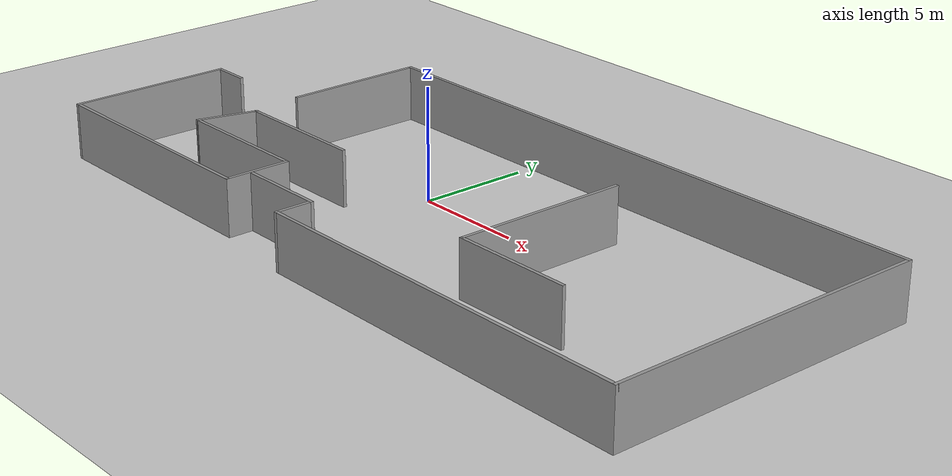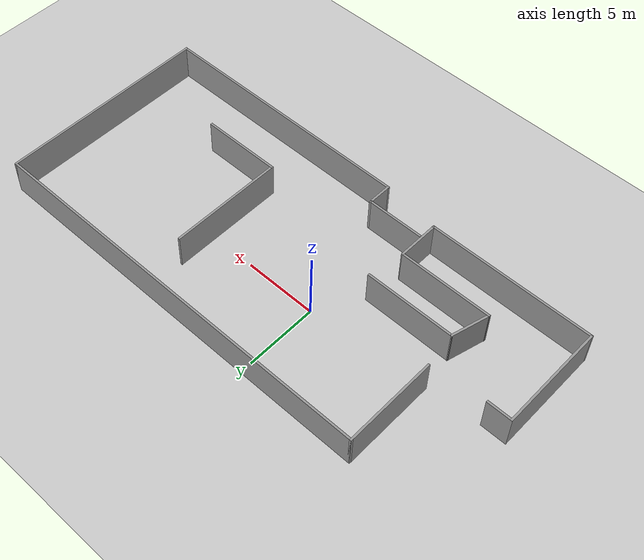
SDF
<sdf version="1.6">
 <world name="default">
  <light name="sun" type="directional">
   <pose>0 0 10 0 -0 0</pose>
   <diffuse>0.8 0.8 0.8 1</diffuse>
   <specular>0.2 0.2 0.2 1</specular>
   <attenuation>
    <range>1000</range>
    <constant>0.9</constant>
    <linear>0.01</linear>
    <quadratic>0.001</quadratic>
   </attenuation>
   <direction>-0.5 0.1 -0.9</direction>
  </light>
  <model name="ground_plane">
   <static>1</static>
   <link name="link">
    <collision name="collision">
     <geometry><plane><normal>0 0 1</normal><size>100 100</size></plane></geometry>
     <surface><friction><ode><mu>100</mu><mu2>50</mu2></ode></friction></surface>
    </collision>
    <visual name="visual">
     <cast_shadows>0</cast_shadows>
     <geometry><plane><normal>0 0 1</normal><size>100 100</size></plane></geometry>
     <material>
      <script><uri>file://media/materials/scripts/gazebo.material</uri><name>Gazebo/Grey</name></script>
     </material>
    </visual>
   </link>
  </model>
  <gravity>0 0 -9.8</gravity>
  <magnetic_field>6e-06 2.3e-05 -4.2e-05</magnetic_field>
  <atmosphere type="adiabatic"/>
  <physics name="default_physics" default="0" type="ode">
   <max_step_size>0.001</max_step_size>
   <real_time_factor>1</real_time_factor>
   <real_time_update_rate>1000</real_time_update_rate>
  </physics>
  <scene><ambient>0.4 0.4 0.4 1</ambient><background>0.7 0.7 0.7 1</background><shadows>1</shadows></scene>
  <spherical_coordinates>
   <surface_model>EARTH_WGS84</surface_model>
   <latitude_deg>0</latitude_deg>
   <longitude_deg>0</longitude_deg>
   <elevation>0</elevation>
   <heading_deg>0</heading_deg>
  </spherical_coordinates>
  <model name="people">
   <pose>3.12671 -1.52783 0 0 -0 0</pose>
   <link name="Wall_0">
    <collision name="Wall_0_Collision">
     <geometry><box><size>6.5 0.15 2.5</size></box></geometry>
     <pose>0 0 1.25 0 -0 0</pose>
    </collision>
    <visual name="Wall_0_Visual">
     <pose>0 0 1.25 0 -0 0</pose>
     <geometry><box><size>6.5 0.15 2.5</size></box></geometry>
     <material>
      <script><uri>file://media/materials/scripts/gazebo.material</uri><name>Gazebo/Grey</name></script>
      <ambient>1 1 1 1</ambient>
     </material>
     <meta><layer>0</layer></meta>
    </visual>
    <pose>-11.3635 4.125 0 0 -0 1.5708</pose>
   </link>
   <link name="Wall_1">
    <collision name="Wall_1_Collision">
     <geometry><box><size>28.25 0.15 2.5</size></box></geometry>
     <pose>0 0 1.25 0 -0 0</pose>
    </collision>
    <visual name="Wall_1_Visual">
     <pose>0 0 1.25 0 -0 0</pose>
     <geometry><box><size>28.25 0.15 2.5</size></box></geometry>
     <material>
      <script><uri>file://media/materials/scripts/gazebo.material</uri><name>Gazebo/Grey</name></script>
      <ambient>1 1 1 1</ambient>
     </material>
     <meta><layer>0</layer></meta>
    </visual>
    <pose>2.68647 7.3 0 0 -0 0</pose>
   </link>
   <link name="Wall_10">
    <collision name="Wall_10_Collision">
     <geometry><box><size>2.75 0.15 2.5</size></box></geometry>
     <pose>0 0 1.25 0 -0 0</pose>
    </collision>
    <visual name="Wall_10_Visual">
     <pose>0 0 1.25 0 -0 0</pose>
     <geometry><box><size>2.75 0.15 2.5</size></box></geometry>
     <material>
      <script><uri>file://media/materials/scripts/gazebo.material</uri><name>Gazebo/Grey</name></script>
      <ambient>1 1 1 1</ambient>
     </material>
     <meta><layer>0</layer></meta>
    </visual>
    <pose>-11.4 -2.7057 0 0 -0 -1.8326</pose>
   </link>
   <link name="Wall_11">
    <collision name="Wall_11_Collision">
     <geometry><box><size>6.5 0.15 2.5</size></box></geometry>
     <pose>0 0 1.25 0 -0 0</pose>
    </collision>
    <visual name="Wall_11_Visual">
     <pose>0 0 1.25 0 -0 0</pose>
     <geometry><box><size>6.5 0.15 2.5</size></box></geometry>
     <material>
      <script><uri>file://media/materials/scripts/gazebo.material</uri><name>Gazebo/Grey</name></script>
      <ambient>1 1 1 1</ambient>
     </material>
     <meta><layer>0</layer></meta>
    </visual>
    <pose>-8.56147 -3.96141 0 0 -0 0</pose>
   </link>
   <link name="Wall_12">
    <collision name="Wall_12_Collision">
     <geometry><box><size>3 0.15 2.5</size></box></geometry>
     <pose>0 0 1.25 0 -0 0</pose>
    </collision>
    <visual name="Wall_12_Visual">
     <pose>0 0 1.25 0 -0 0</pose>
     <geometry><box><size>3 0.15 2.5</size></box></geometry>
     <material>
      <script><uri>file://media/materials/scripts/gazebo.material</uri><name>Gazebo/Grey</name></script>
      <ambient>1 1 1 1</ambient>
     </material>
     <meta><layer>0</layer></meta>
    </visual>
    <pose>-5.38647 -5.38641 0 0 -0 -1.5708</pose>
   </link>
   <link name="Wall_13">
    <collision name="Wall_13_Collision">
     <geometry><box><size>11.5 0.15 2.5</size></box></geometry>
     <pose>0 0 1.25 0 -0 0</pose>
    </collision>
    <visual name="Wall_13_Visual">
     <pose>0 0 1.25 0 -0 0</pose>
     <geometry><box><size>11.5 0.15 2.5</size></box></geometry>
     <material>
      <script><uri>file://media/materials/scripts/gazebo.material</uri><name>Gazebo/Grey</name></script>
      <ambient>1 1 1 1</ambient>
     </material>
     <meta><layer>0</layer></meta>
    </visual>
    <pose>-11.0615 -6.81141 0 0 -0 3.14159</pose>
   </link>
   <link name="Wall_14">
    <collision name="Wall_14_Collision">
     <geometry><box><size>7.5 0.15 2.5</size></box></geometry>
     <pose>0 0 1.25 0 -0 0</pose>
    </collision>
    <visual name="Wall_14_Visual">
     <pose>0 0 1.25 0 -0 0</pose>
     <geometry><box><size>7.5 0.15 2.5</size></box></geometry>
     <material>
      <script><uri>file://media/materials/scripts/gazebo.material</uri><name>Gazebo/Grey</name></script>
      <ambient>1 1 1 1</ambient>
     </material>
     <meta><layer>0</layer></meta>
    </visual>
    <pose>-16.7365 -3.13641 0 0 -0 1.5708</pose>
   </link>
   <link name="Wall_15">
    <collision name="Wall_15_Collision">
     <geometry><box><size>1.75 0.15 2.5</size></box></geometry>
     <pose>0 0 1.25 0 -0 0</pose>
    </collision>
    <visual name="Wall_15_Visual">
     <pose>0 0 1.25 0 -0 0</pose>
     <geometry><box><size>1.75 0.15 2.5</size></box></geometry>
     <material>
      <script><uri>file://media/materials/scripts/gazebo.material</uri><name>Gazebo/Grey</name></script>
      <ambient>1 1 1 1</ambient>
     </material>
     <meta><layer>0</layer></meta>
    </visual>
    <pose>-15.9365 0.538593 0 0 -0 0</pose>
   </link>
   <link name="Wall_17">
    <collision name="Wall_17_Collision">
     <geometry><box><size>1.75 0.15 2.5</size></box></geometry>
     <pose>0 0 1.25 0 -0 0</pose>
    </collision>
    <visual name="Wall_17_Visual">
     <pose>0 0 1.25 0 -0 0</pose>
     <geometry><box><size>1.75 0.15 2.5</size></box></geometry>
     <material>
      <script><uri>file://media/materials/scripts/gazebo.material</uri><name>Gazebo/Grey</name></script>
      <ambient>1 1 1 1</ambient>
     </material>
     <meta><layer>0</layer></meta>
    </visual>
    <pose>-1.36353 -6.5 0 0 -0 1.5708</pose>
   </link>
   <link name="Wall_18">
    <collision name="Wall_18_Collision">
     <geometry><box><size>4 0.15 2.5</size></box></geometry>
     <pose>0 0 1.25 0 -0 0</pose>
    </collision>
    <visual name="Wall_18_Visual">
     <pose>0 0 1.25 0 -0 0</pose>
     <geometry><box><size>4 0.15 2.5</size></box></geometry>
     <material>
      <script><uri>file://media/materials/scripts/gazebo.material</uri><name>Gazebo/Grey</name></script>
      <ambient>1 1 1 1</ambient>
     </material>
     <meta><layer>0</layer></meta>
    </visual>
    <pose>-3.28853 -5.7 0 0 -0 3.14159</pose>
   </link>
   <link name="Wall_20">
    <collision name="Wall_20_Collision">
     <geometry><box><size>8 0.15 2.5</size></box></geometry>
     <pose>0 0 1.25 0 -0 0</pose>
    </collision>
    <visual name="Wall_20_Visual">
     <pose>0 0 1.25 0 -0 0</pose>
     <geometry><box><size>8 0.15 2.5</size></box></geometry>
     <material>
      <script><uri>file://media/materials/scripts/gazebo.material</uri><name>Gazebo/Grey</name></script>
      <ambient>1 1 1 1</ambient>
     </material>
     <meta><layer>0</layer></meta>
    </visual>
    <pose>4.97218 0.383092 0 0 -0 -1.5708</pose>
   </link>
   <link name="Wall_21">
    <collision name="Wall_21_Collision">
     <geometry><box><size>5.5 0.15 2.5</size></box></geometry>
     <pose>0 0 1.25 0 -0 0</pose>
    </collision>
    <visual name="Wall_21_Visual">
     <pose>0 0 1.25 0 -0 0</pose>
     <geometry><box><size>5.5 0.15 2.5</size></box></geometry>
     <material>
      <script><uri>file://media/materials/scripts/gazebo.material</uri><name>Gazebo/Grey</name></script>
      <ambient>1 1 1 1</ambient>
     </material>
     <meta><layer>0</layer></meta>
    </visual>
    <pose>7.64718 -3.54191 0 0 -0 0</pose>
   </link>
   <link name="Wall_3">
    <collision name="Wall_3_Collision">
     <geometry><box><size>14.75 0.15 2.5</size></box></geometry>
     <pose>0 0 1.25 0 -0 0</pose>
    </collision>
    <visual name="Wall_3_Visual">
     <pose>0 0 1.25 0 -0 0</pose>
     <geometry><box><size>14.75 0.15 2.5</size></box></geometry>
     <material>
      <script><uri>file://media/materials/scripts/gazebo.material</uri><name>Gazebo/Grey</name></script>
      <ambient>1 1 1 1</ambient>
     </material>
     <meta><layer>0</layer></meta>
    </visual>
    <pose>16.7365 -0 0 0 -0 -1.5708</pose>
   </link>
   <link name="Wall_4">
    <collision name="Wall_4_Collision">
     <geometry><box><size>18.25 0.15 2.5</size></box></geometry>
     <pose>0 0 1.25 0 -0 0</pose>
    </collision>
    <visual name="Wall_4_Visual">
     <pose>0 0 1.25 0 -0 0</pose>
     <geometry><box><size>18.25 0.15 2.5</size></box></geometry>
     <material>
      <script><uri>file://media/materials/scripts/gazebo.material</uri><name>Gazebo/Grey</name></script>
      <ambient>1 1 1 1</ambient>
     </material>
     <meta><layer>0</layer></meta>
    </visual>
    <pose>7.68647 -7.3 0 0 -0 3.14159</pose>
   </link>
   <link name="Wall_9">
    <collision name="Wall_9_Collision">
     <geometry><box><size>6.25 0.15 2.5</size></box></geometry>
     <pose>0 0 1.25 0 -0 0</pose>
    </collision>
    <visual name="Wall_9_Visual">
     <pose>0 0 1.25 0 -0 0</pose>
     <geometry><box><size>6.25 0.15 2.5</size></box></geometry>
     <material>
      <script><uri>file://media/materials/scripts/gazebo.material</uri><name>Gazebo/Grey</name></script>
      <ambient>1 1 1 1</ambient>
     </material>
     <meta><layer>0</layer></meta>
    </visual>
    <pose>-8.01353 -1.45 0 0 -0 3.14159</pose>
   </link>
   <static>1</static>
  </model>
 </world>
</sdf>
